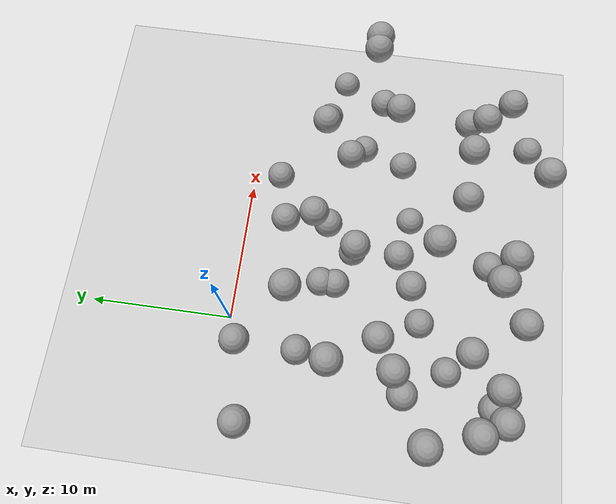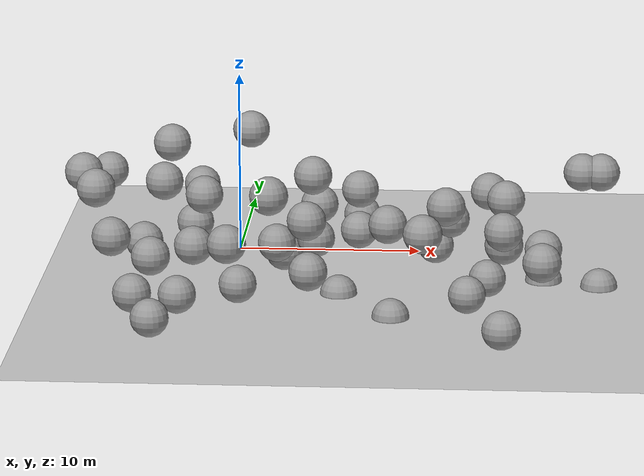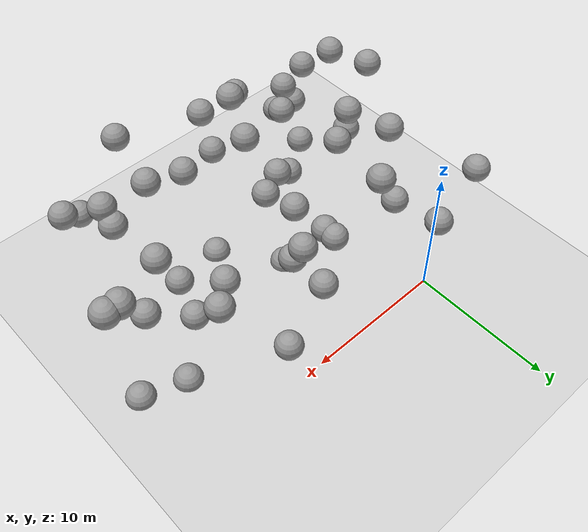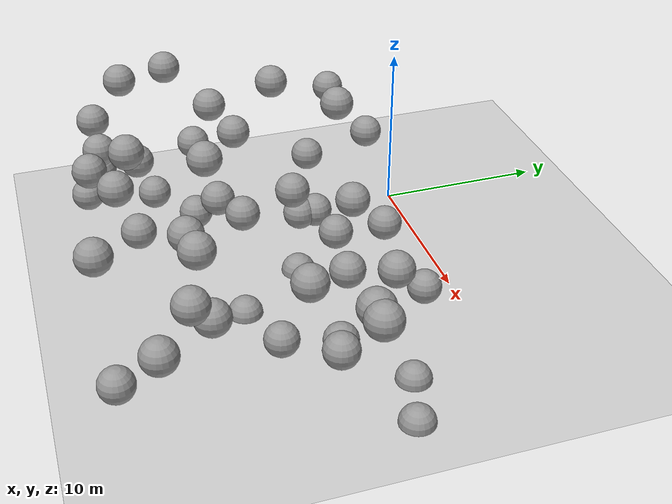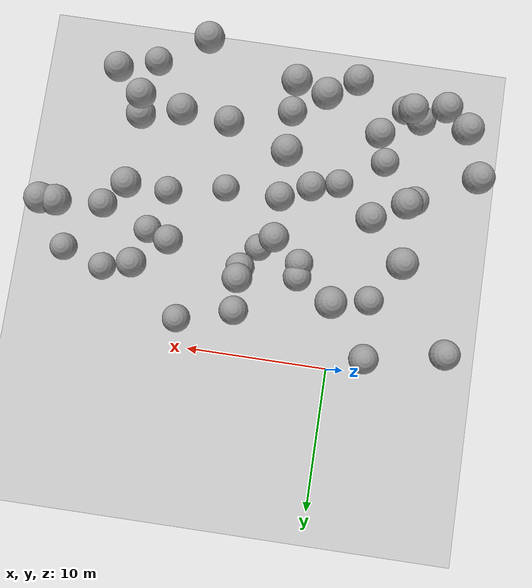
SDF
<sdf version="1.7">
 <world name="default">
  <model name="ground_plane">
   <static>1</static>
   <link name="link">
    <collision name="collision">
     <geometry><plane><normal>0 0 1</normal><size>100 100</size></plane></geometry>
     <surface>
      <contact><collide_bitmask>65535</collide_bitmask></contact>
      <friction><ode><mu>100</mu><mu2>50</mu2></ode></friction>
     </surface>
    </collision>
    <visual name="visual">
     <cast_shadows>0</cast_shadows>
     <geometry><plane><normal>0 0 1</normal><size>100 100</size></plane></geometry>
     <material>
      <script><uri>file://media/materials/scripts/gazebo.material</uri><name>Gazebo/Grey</name></script>
     </material>
    </visual>
   </link>
  </model>
  <model name="sphere_3">
   <static>1</static>
   <pose>1 -4 8 0 0 0</pose>
   <link name="link">
    <inertial>
     <mass>418.87902047863906</mass>
     <inertia>
      <ixx>167.55160819145564</ixx>
      <iyy>167.55160819145564</iyy>
      <izz>167.55160819145564</izz>
      <ixy>0</ixy>
      <ixz>0</ixz>
      <iyz>0</iyz>
     </inertia>
    </inertial>
    <collision name="collision"><geometry><sphere><radius>1.0</radius></sphere></geometry></collision>
    <visual name="visual">
     <geometry><sphere><radius>1.0</radius></sphere></geometry>
     <material>
      <script><uri>file://media/materials/scripts/gazebo.material</uri><name>Gazebo/Grey</name></script>
     </material>
    </visual>
   </link>
  </model>
  <model name="sphere_5">
   <static>1</static>
   <pose>11 -2 1 0 0 0</pose>
   <link name="link">
    <inertial>
     <mass>418.87902047863906</mass>
     <inertia>
      <ixx>167.55160819145564</ixx>
      <iyy>167.55160819145564</iyy>
      <izz>167.55160819145564</izz>
      <ixy>0</ixy>
      <ixz>0</ixz>
      <iyz>0</iyz>
     </inertia>
    </inertial>
    <collision name="collision"><geometry><sphere><radius>1.0</radius></sphere></geometry></collision>
    <visual name="visual">
     <geometry><sphere><radius>1.0</radius></sphere></geometry>
     <material>
      <script><uri>file://media/materials/scripts/gazebo.material</uri><name>Gazebo/Grey</name></script>
     </material>
    </visual>
   </link>
  </model>
  <model name="sphere_7">
   <static>1</static>
   <pose>20 -6 0 0 0 0</pose>
   <link name="link">
    <inertial>
     <mass>418.87902047863906</mass>
     <inertia>
      <ixx>167.55160819145564</ixx>
      <iyy>167.55160819145564</iyy>
      <izz>167.55160819145564</izz>
      <ixy>0</ixy>
      <ixz>0</ixz>
      <iyz>0</iyz>
     </inertia>
    </inertial>
    <collision name="collision"><geometry><sphere><radius>1.0</radius></sphere></geometry></collision>
    <visual name="visual">
     <geometry><sphere><radius>1.0</radius></sphere></geometry>
     <material>
      <script><uri>file://media/materials/scripts/gazebo.material</uri><name>Gazebo/Grey</name></script>
     </material>
    </visual>
   </link>
  </model>
  <model name="sphere_8">
   <static>1</static>
   <pose>5 -17 4 0 0 0</pose>
   <link name="link">
    <inertial>
     <mass>418.87902047863906</mass>
     <inertia>
      <ixx>167.55160819145564</ixx>
      <iyy>167.55160819145564</iyy>
      <izz>167.55160819145564</izz>
      <ixy>0</ixy>
      <ixz>0</ixz>
      <iyz>0</iyz>
     </inertia>
    </inertial>
    <collision name="collision"><geometry><sphere><radius>1.0</radius></sphere></geometry></collision>
    <visual name="visual">
     <geometry><sphere><radius>1.0</radius></sphere></geometry>
     <material>
      <script><uri>file://media/materials/scripts/gazebo.material</uri><name>Gazebo/Grey</name></script>
     </material>
    </visual>
   </link>
  </model>
  <model name="sphere_9">
   <static>1</static>
   <pose>-3 -11 7 0 0 0</pose>
   <link name="link">
    <inertial>
     <mass>418.87902047863906</mass>
     <inertia>
      <ixx>167.55160819145564</ixx>
      <iyy>167.55160819145564</iyy>
      <izz>167.55160819145564</izz>
      <ixy>0</ixy>
      <ixz>0</ixz>
      <iyz>0</iyz>
     </inertia>
    </inertial>
    <collision name="collision"><geometry><sphere><radius>1.0</radius></sphere></geometry></collision>
    <visual name="visual">
     <geometry><sphere><radius>1.0</radius></sphere></geometry>
     <material>
      <script><uri>file://media/materials/scripts/gazebo.material</uri><name>Gazebo/Grey</name></script>
     </material>
    </visual>
   </link>
  </model>
  <model name="sphere_14">
   <static>1</static>
   <pose>15 -20 2 0 0 0</pose>
   <link name="link">
    <inertial>
     <mass>418.87902047863906</mass>
     <inertia>
      <ixx>167.55160819145564</ixx>
      <iyy>167.55160819145564</iyy>
      <izz>167.55160819145564</izz>
      <ixy>0</ixy>
      <ixz>0</ixz>
      <iyz>0</iyz>
     </inertia>
    </inertial>
    <collision name="collision"><geometry><sphere><radius>1.0</radius></sphere></geometry></collision>
    <visual name="visual">
     <geometry><sphere><radius>1.0</radius></sphere></geometry>
     <material>
      <script><uri>file://media/materials/scripts/gazebo.material</uri><name>Gazebo/Grey</name></script>
     </material>
    </visual>
   </link>
  </model>
  <model name="sphere_15">
   <static>1</static>
   <pose>3 -7 2 0 0 0</pose>
   <link name="link">
    <inertial>
     <mass>418.87902047863906</mass>
     <inertia>
      <ixx>167.55160819145564</ixx>
      <iyy>167.55160819145564</iyy>
      <izz>167.55160819145564</izz>
      <ixy>0</ixy>
      <ixz>0</ixz>
      <iyz>0</iyz>
     </inertia>
    </inertial>
    <collision name="collision"><geometry><sphere><radius>1.0</radius></sphere></geometry></collision>
    <visual name="visual">
     <geometry><sphere><radius>1.0</radius></sphere></geometry>
     <material>
      <script><uri>file://media/materials/scripts/gazebo.material</uri><name>Gazebo/Grey</name></script>
     </material>
    </visual>
   </link>
  </model>
  <model name="sphere_18">
   <static>1</static>
   <pose>5 -11 4 0 0 0</pose>
   <link name="link">
    <inertial>
     <mass>418.87902047863906</mass>
     <inertia>
      <ixx>167.55160819145564</ixx>
      <iyy>167.55160819145564</iyy>
      <izz>167.55160819145564</izz>
      <ixy>0</ixy>
      <ixz>0</ixz>
      <iyz>0</iyz>
     </inertia>
    </inertial>
    <collision name="collision"><geometry><sphere><radius>1.0</radius></sphere></geometry></collision>
    <visual name="visual">
     <geometry><sphere><radius>1.0</radius></sphere></geometry>
     <material>
      <script><uri>file://media/materials/scripts/gazebo.material</uri><name>Gazebo/Grey</name></script>
     </material>
    </visual>
   </link>
  </model>
  <model name="sphere_19">
   <static>1</static>
   <pose>15 -10 6 0 0 0</pose>
   <link name="link">
    <inertial>
     <mass>418.87902047863906</mass>
     <inertia>
      <ixx>167.55160819145564</ixx>
      <iyy>167.55160819145564</iyy>
      <izz>167.55160819145564</izz>
      <ixy>0</ixy>
      <ixz>0</ixz>
      <iyz>0</iyz>
     </inertia>
    </inertial>
    <collision name="collision"><geometry><sphere><radius>1.0</radius></sphere></geometry></collision>
    <visual name="visual">
     <geometry><sphere><radius>1.0</radius></sphere></geometry>
     <material>
      <script><uri>file://media/materials/scripts/gazebo.material</uri><name>Gazebo/Grey</name></script>
     </material>
    </visual>
   </link>
  </model>
  <model name="sphere_20">
   <static>1</static>
   <pose>-3 -18 5 0 0 0</pose>
   <link name="link">
    <inertial>
     <mass>418.87902047863906</mass>
     <inertia>
      <ixx>167.55160819145564</ixx>
      <iyy>167.55160819145564</iyy>
      <izz>167.55160819145564</izz>
      <ixy>0</ixy>
      <ixz>0</ixz>
      <iyz>0</iyz>
     </inertia>
    </inertial>
    <collision name="collision"><geometry><sphere><radius>1.0</radius></sphere></geometry></collision>
    <visual name="visual">
     <geometry><sphere><radius>1.0</radius></sphere></geometry>
     <material>
      <script><uri>file://media/materials/scripts/gazebo.material</uri><name>Gazebo/Grey</name></script>
     </material>
    </visual>
   </link>
  </model>
  <model name="sphere_22">
   <static>1</static>
   <pose>5 -8 5 0 0 0</pose>
   <link name="link">
    <inertial>
     <mass>418.87902047863906</mass>
     <inertia>
      <ixx>167.55160819145564</ixx>
      <iyy>167.55160819145564</iyy>
      <izz>167.55160819145564</izz>
      <ixy>0</ixy>
      <ixz>0</ixz>
      <iyz>0</iyz>
     </inertia>
    </inertial>
    <collision name="collision"><geometry><sphere><radius>1.0</radius></sphere></geometry></collision>
    <visual name="visual">
     <geometry><sphere><radius>1.0</radius></sphere></geometry>
     <material>
      <script><uri>file://media/materials/scripts/gazebo.material</uri><name>Gazebo/Grey</name></script>
     </material>
    </visual>
   </link>
  </model>
  <model name="sphere_26">
   <static>1</static>
   <pose>9 -12 0 0 0 0</pose>
   <link name="link">
    <inertial>
     <mass>418.87902047863906</mass>
     <inertia>
      <ixx>167.55160819145564</ixx>
      <iyy>167.55160819145564</iyy>
      <izz>167.55160819145564</izz>
      <ixy>0</ixy>
      <ixz>0</ixz>
      <iyz>0</iyz>
     </inertia>
    </inertial>
    <collision name="collision"><geometry><sphere><radius>1.0</radius></sphere></geometry></collision>
    <visual name="visual">
     <geometry><sphere><radius>1.0</radius></sphere></geometry>
     <material>
      <script><uri>file://media/materials/scripts/gazebo.material</uri><name>Gazebo/Grey</name></script>
     </material>
    </visual>
   </link>
  </model>
  <model name="sphere_29">
   <static>1</static>
   <pose>15 -15 5 0 0 0</pose>
   <link name="link">
    <inertial>
     <mass>418.87902047863906</mass>
     <inertia>
      <ixx>167.55160819145564</ixx>
      <iyy>167.55160819145564</iyy>
      <izz>167.55160819145564</izz>
      <ixy>0</ixy>
      <ixz>0</ixz>
      <iyz>0</iyz>
     </inertia>
    </inertial>
    <collision name="collision"><geometry><sphere><radius>1.0</radius></sphere></geometry></collision>
    <visual name="visual">
     <geometry><sphere><radius>1.0</radius></sphere></geometry>
     <material>
      <script><uri>file://media/materials/scripts/gazebo.material</uri><name>Gazebo/Grey</name></script>
     </material>
    </visual>
   </link>
  </model>
  <model name="sphere_30">
   <static>1</static>
   <pose>6 -8 0 0 0 0</pose>
   <link name="link">
    <inertial>
     <mass>418.87902047863906</mass>
     <inertia>
      <ixx>167.55160819145564</ixx>
      <iyy>167.55160819145564</iyy>
      <izz>167.55160819145564</izz>
      <ixy>0</ixy>
      <ixz>0</ixz>
      <iyz>0</iyz>
     </inertia>
    </inertial>
    <collision name="collision"><geometry><sphere><radius>1.0</radius></sphere></geometry></collision>
    <visual name="visual">
     <geometry><sphere><radius>1.0</radius></sphere></geometry>
     <material>
      <script><uri>file://media/materials/scripts/gazebo.material</uri><name>Gazebo/Grey</name></script>
     </material>
    </visual>
   </link>
  </model>
  <model name="sphere_32">
   <static>1</static>
   <pose>14 -8 1 0 0 0</pose>
   <link name="link">
    <inertial>
     <mass>418.87902047863906</mass>
     <inertia>
      <ixx>167.55160819145564</ixx>
      <iyy>167.55160819145564</iyy>
      <izz>167.55160819145564</izz>
      <ixy>0</ixy>
      <ixz>0</ixz>
      <iyz>0</iyz>
     </inertia>
    </inertial>
    <collision name="collision"><geometry><sphere><radius>1.0</radius></sphere></geometry></collision>
    <visual name="visual">
     <geometry><sphere><radius>1.0</radius></sphere></geometry>
     <material>
      <script><uri>file://media/materials/scripts/gazebo.material</uri><name>Gazebo/Grey</name></script>
     </material>
    </visual>
   </link>
  </model>
  <model name="sphere_33">
   <static>1</static>
   <pose>11 -20 7 0 0 0</pose>
   <link name="link">
    <inertial>
     <mass>418.87902047863906</mass>
     <inertia>
      <ixx>167.55160819145564</ixx>
      <iyy>167.55160819145564</iyy>
      <izz>167.55160819145564</izz>
      <ixy>0</ixy>
      <ixz>0</ixz>
      <iyz>0</iyz>
     </inertia>
    </inertial>
    <collision name="collision"><geometry><sphere><radius>1.0</radius></sphere></geometry></collision>
    <visual name="visual">
     <geometry><sphere><radius>1.0</radius></sphere></geometry>
     <material>
      <script><uri>file://media/materials/scripts/gazebo.material</uri><name>Gazebo/Grey</name></script>
     </material>
    </visual>
   </link>
  </model>
  <model name="sphere_41">
   <static>1</static>
   <pose>-4 -18 3 0 0 0</pose>
   <link name="link">
    <inertial>
     <mass>418.87902047863906</mass>
     <inertia>
      <ixx>167.55160819145564</ixx>
      <iyy>167.55160819145564</iyy>
      <izz>167.55160819145564</izz>
      <ixy>0</ixy>
      <ixz>0</ixz>
      <iyz>0</iyz>
     </inertia>
    </inertial>
    <collision name="collision"><geometry><sphere><radius>1.0</radius></sphere></geometry></collision>
    <visual name="visual">
     <geometry><sphere><radius>1.0</radius></sphere></geometry>
     <material>
      <script><uri>file://media/materials/scripts/gazebo.material</uri><name>Gazebo/Grey</name></script>
     </material>
    </visual>
   </link>
  </model>
  <model name="sphere_42">
   <static>1</static>
   <pose>15 -16 6 0 0 0</pose>
   <link name="link">
    <inertial>
     <mass>418.87902047863906</mass>
     <inertia>
      <ixx>167.55160819145564</ixx>
      <iyy>167.55160819145564</iyy>
      <izz>167.55160819145564</izz>
      <ixy>0</ixy>
      <ixz>0</ixz>
      <iyz>0</iyz>
     </inertia>
    </inertial>
    <collision name="collision"><geometry><sphere><radius>1.0</radius></sphere></geometry></collision>
    <visual name="visual">
     <geometry><sphere><radius>1.0</radius></sphere></geometry>
     <material>
      <script><uri>file://media/materials/scripts/gazebo.material</uri><name>Gazebo/Grey</name></script>
     </material>
    </visual>
   </link>
  </model>
  <model name="sphere_47">
   <static>1</static>
   <pose>-4 -12 4 0 0 0</pose>
   <link name="link">
    <inertial>
     <mass>418.87902047863906</mass>
     <inertia>
      <ixx>167.55160819145564</ixx>
      <iyy>167.55160819145564</iyy>
      <izz>167.55160819145564</izz>
      <ixy>0</ixy>
      <ixz>0</ixz>
      <iyz>0</iyz>
     </inertia>
    </inertial>
    <collision name="collision"><geometry><sphere><radius>1.0</radius></sphere></geometry></collision>
    <visual name="visual">
     <geometry><sphere><radius>1.0</radius></sphere></geometry>
     <material>
      <script><uri>file://media/materials/scripts/gazebo.material</uri><name>Gazebo/Grey</name></script>
     </material>
    </visual>
   </link>
  </model>
  <model name="sphere_53">
   <static>1</static>
   <pose>9 -15 6 0 0 0</pose>
   <link name="link">
    <inertial>
     <mass>418.87902047863906</mass>
     <inertia>
      <ixx>167.55160819145564</ixx>
      <iyy>167.55160819145564</iyy>
      <izz>167.55160819145564</izz>
      <ixy>0</ixy>
      <ixz>0</ixz>
      <iyz>0</iyz>
     </inertia>
    </inertial>
    <collision name="collision"><geometry><sphere><radius>1.0</radius></sphere></geometry></collision>
    <visual name="visual">
     <geometry><sphere><radius>1.0</radius></sphere></geometry>
     <material>
      <script><uri>file://media/materials/scripts/gazebo.material</uri><name>Gazebo/Grey</name></script>
     </material>
    </visual>
   </link>
  </model>
  <model name="sphere_60">
   <static>1</static>
   <pose>-3 -7 8 0 0 0</pose>
   <link name="link">
    <inertial>
     <mass>418.87902047863906</mass>
     <inertia>
      <ixx>167.55160819145564</ixx>
      <iyy>167.55160819145564</iyy>
      <izz>167.55160819145564</izz>
      <ixy>0</ixy>
      <ixz>0</ixz>
      <iyz>0</iyz>
     </inertia>
    </inertial>
    <collision name="collision"><geometry><sphere><radius>1.0</radius></sphere></geometry></collision>
    <visual name="visual">
     <geometry><sphere><radius>1.0</radius></sphere></geometry>
     <material>
      <script><uri>file://media/materials/scripts/gazebo.material</uri><name>Gazebo/Grey</name></script>
     </material>
    </visual>
   </link>
  </model>
  <model name="sphere_62">
   <static>1</static>
   <pose>3 -12 4 0 0 0</pose>
   <link name="link">
    <inertial>
     <mass>418.87902047863906</mass>
     <inertia>
      <ixx>167.55160819145564</ixx>
      <iyy>167.55160819145564</iyy>
      <izz>167.55160819145564</izz>
      <ixy>0</ixy>
      <ixz>0</ixz>
      <iyz>0</iyz>
     </inertia>
    </inertial>
    <collision name="collision"><geometry><sphere><radius>1.0</radius></sphere></geometry></collision>
    <visual name="visual">
     <geometry><sphere><radius>1.0</radius></sphere></geometry>
     <material>
      <script><uri>file://media/materials/scripts/gazebo.material</uri><name>Gazebo/Grey</name></script>
     </material>
    </visual>
   </link>
  </model>
  <model name="sphere_66">
   <static>1</static>
   <pose>13 -11 1 0 0 0</pose>
   <link name="link">
    <inertial>
     <mass>418.87902047863906</mass>
     <inertia>
      <ixx>167.55160819145564</ixx>
      <iyy>167.55160819145564</iyy>
      <izz>167.55160819145564</izz>
      <ixy>0</ixy>
      <ixz>0</ixz>
      <iyz>0</iyz>
     </inertia>
    </inertial>
    <collision name="collision"><geometry><sphere><radius>1.0</radius></sphere></geometry></collision>
    <visual name="visual">
     <geometry><sphere><radius>1.0</radius></sphere></geometry>
     <material>
      <script><uri>file://media/materials/scripts/gazebo.material</uri><name>Gazebo/Grey</name></script>
     </material>
    </visual>
   </link>
  </model>
  <model name="sphere_68">
   <static>1</static>
   <pose>12 -7 4 0 0 0</pose>
   <link name="link">
    <inertial>
     <mass>418.87902047863906</mass>
     <inertia>
      <ixx>167.55160819145564</ixx>
      <iyy>167.55160819145564</iyy>
      <izz>167.55160819145564</izz>
      <ixy>0</ixy>
      <ixz>0</ixz>
      <iyz>0</iyz>
     </inertia>
    </inertial>
    <collision name="collision"><geometry><sphere><radius>1.0</radius></sphere></geometry></collision>
    <visual name="visual">
     <geometry><sphere><radius>1.0</radius></sphere></geometry>
     <material>
      <script><uri>file://media/materials/scripts/gazebo.material</uri><name>Gazebo/Grey</name></script>
     </material>
    </visual>
   </link>
  </model>
  <model name="sphere_72">
   <static>1</static>
   <pose>12 -15 7 0 0 0</pose>
   <link name="link">
    <inertial>
     <mass>418.87902047863906</mass>
     <inertia>
      <ixx>167.55160819145564</ixx>
      <iyy>167.55160819145564</iyy>
      <izz>167.55160819145564</izz>
      <ixy>0</ixy>
      <ixz>0</ixz>
      <iyz>0</iyz>
     </inertia>
    </inertial>
    <collision name="collision"><geometry><sphere><radius>1.0</radius></sphere></geometry></collision>
    <visual name="visual">
     <geometry><sphere><radius>1.0</radius></sphere></geometry>
     <material>
      <script><uri>file://media/materials/scripts/gazebo.material</uri><name>Gazebo/Grey</name></script>
     </material>
    </visual>
   </link>
  </model>
  <model name="sphere_75">
   <static>1</static>
   <pose>-2 -15 2 0 0 0</pose>
   <link name="link">
    <inertial>
     <mass>418.87902047863906</mass>
     <inertia>
      <ixx>167.55160819145564</ixx>
      <iyy>167.55160819145564</iyy>
      <izz>167.55160819145564</izz>
      <ixy>0</ixy>
      <ixz>0</ixz>
      <iyz>0</iyz>
     </inertia>
    </inertial>
    <collision name="collision"><geometry><sphere><radius>1.0</radius></sphere></geometry></collision>
    <visual name="visual">
     <geometry><sphere><radius>1.0</radius></sphere></geometry>
     <material>
      <script><uri>file://media/materials/scripts/gazebo.material</uri><name>Gazebo/Grey</name></script>
     </material>
    </visual>
   </link>
  </model>
  <model name="sphere_77">
   <static>1</static>
   <pose>7 -5 5 0 0 0</pose>
   <link name="link">
    <inertial>
     <mass>418.87902047863906</mass>
     <inertia>
      <ixx>167.55160819145564</ixx>
      <iyy>167.55160819145564</iyy>
      <izz>167.55160819145564</izz>
      <ixy>0</ixy>
      <ixz>0</ixz>
      <iyz>0</iyz>
     </inertia>
    </inertial>
    <collision name="collision"><geometry><sphere><radius>1.0</radius></sphere></geometry></collision>
    <visual name="visual">
     <geometry><sphere><radius>1.0</radius></sphere></geometry>
     <material>
      <script><uri>file://media/materials/scripts/gazebo.material</uri><name>Gazebo/Grey</name></script>
     </material>
    </visual>
   </link>
  </model>
  <model name="sphere_78">
   <static>1</static>
   <pose>1 -19 6 0 0 0</pose>
   <link name="link">
    <inertial>
     <mass>418.87902047863906</mass>
     <inertia>
      <ixx>167.55160819145564</ixx>
      <iyy>167.55160819145564</iyy>
      <izz>167.55160819145564</izz>
      <ixy>0</ixy>
      <ixz>0</ixz>
      <iyz>0</iyz>
     </inertia>
    </inertial>
    <collision name="collision"><geometry><sphere><radius>1.0</radius></sphere></geometry></collision>
    <visual name="visual">
     <geometry><sphere><radius>1.0</radius></sphere></geometry>
     <material>
      <script><uri>file://media/materials/scripts/gazebo.material</uri><name>Gazebo/Grey</name></script>
     </material>
    </visual>
   </link>
  </model>
  <model name="sphere_79">
   <static>1</static>
   <pose>5 -13 8 0 0 0</pose>
   <link name="link">
    <inertial>
     <mass>418.87902047863906</mass>
     <inertia>
      <ixx>167.55160819145564</ixx>
      <iyy>167.55160819145564</iyy>
      <izz>167.55160819145564</izz>
      <ixy>0</ixy>
      <ixz>0</ixz>
      <iyz>0</iyz>
     </inertia>
    </inertial>
    <collision name="collision"><geometry><sphere><radius>1.0</radius></sphere></geometry></collision>
    <visual name="visual">
     <geometry><sphere><radius>1.0</radius></sphere></geometry>
     <material>
      <script><uri>file://media/materials/scripts/gazebo.material</uri><name>Gazebo/Grey</name></script>
     </material>
    </visual>
   </link>
  </model>
  <model name="sphere_91">
   <static>1</static>
   <pose>14 -5 5 0 0 0</pose>
   <link name="link">
    <inertial>
     <mass>418.87902047863906</mass>
     <inertia>
      <ixx>167.55160819145564</ixx>
      <iyy>167.55160819145564</iyy>
      <izz>167.55160819145564</izz>
      <ixy>0</ixy>
      <ixz>0</ixz>
      <iyz>0</iyz>
     </inertia>
    </inertial>
    <collision name="collision"><geometry><sphere><radius>1.0</radius></sphere></geometry></collision>
    <visual name="visual">
     <geometry><sphere><radius>1.0</radius></sphere></geometry>
     <material>
      <script><uri>file://media/materials/scripts/gazebo.material</uri><name>Gazebo/Grey</name></script>
     </material>
    </visual>
   </link>
  </model>
  <model name="sphere_93">
   <static>1</static>
   <pose>17 -9 3 0 0 0</pose>
   <link name="link">
    <inertial>
     <mass>418.87902047863906</mass>
     <inertia>
      <ixx>167.55160819145564</ixx>
      <iyy>167.55160819145564</iyy>
      <izz>167.55160819145564</izz>
      <ixy>0</ixy>
      <ixz>0</ixz>
      <iyz>0</iyz>
     </inertia>
    </inertial>
    <collision name="collision"><geometry><sphere><radius>1.0</radius></sphere></geometry></collision>
    <visual name="visual">
     <geometry><sphere><radius>1.0</radius></sphere></geometry>
     <material>
      <script><uri>file://media/materials/scripts/gazebo.material</uri><name>Gazebo/Grey</name></script>
     </material>
    </visual>
   </link>
  </model>
  <model name="sphere_94">
   <static>1</static>
   <pose>17 -5 0 0 0 0</pose>
   <link name="link">
    <inertial>
     <mass>418.87902047863906</mass>
     <inertia>
      <ixx>167.55160819145564</ixx>
      <iyy>167.55160819145564</iyy>
      <izz>167.55160819145564</izz>
      <ixy>0</ixy>
      <ixz>0</ixz>
      <iyz>0</iyz>
     </inertia>
    </inertial>
    <collision name="collision"><geometry><sphere><radius>1.0</radius></sphere></geometry></collision>
    <visual name="visual">
     <geometry><sphere><radius>1.0</radius></sphere></geometry>
     <material>
      <script><uri>file://media/materials/scripts/gazebo.material</uri><name>Gazebo/Grey</name></script>
     </material>
    </visual>
   </link>
  </model>
  <model name="sphere_95">
   <static>1</static>
   <pose>-1 -10 6 0 0 0</pose>
   <link name="link">
    <inertial>
     <mass>418.87902047863906</mass>
     <inertia>
      <ixx>167.55160819145564</ixx>
      <iyy>167.55160819145564</iyy>
      <izz>167.55160819145564</izz>
      <ixy>0</ixy>
      <ixz>0</ixz>
      <iyz>0</iyz>
     </inertia>
    </inertial>
    <collision name="collision"><geometry><sphere><radius>1.0</radius></sphere></geometry></collision>
    <visual name="visual">
     <geometry><sphere><radius>1.0</radius></sphere></geometry>
     <material>
      <script><uri>file://media/materials/scripts/gazebo.material</uri><name>Gazebo/Grey</name></script>
     </material>
    </visual>
   </link>
  </model>
  <model name="sphere_99">
   <static>1</static>
   <pose>-3 -19 2 0 0 0</pose>
   <link name="link">
    <inertial>
     <mass>418.87902047863906</mass>
     <inertia>
      <ixx>167.55160819145564</ixx>
      <iyy>167.55160819145564</iyy>
      <izz>167.55160819145564</izz>
      <ixy>0</ixy>
      <ixz>0</ixz>
      <iyz>0</iyz>
     </inertia>
    </inertial>
    <collision name="collision"><geometry><sphere><radius>1.0</radius></sphere></geometry></collision>
    <visual name="visual">
     <geometry><sphere><radius>1.0</radius></sphere></geometry>
     <material>
      <script><uri>file://media/materials/scripts/gazebo.material</uri><name>Gazebo/Grey</name></script>
     </material>
    </visual>
   </link>
  </model>
  <model name="sphere_100">
   <static>1</static>
   <pose>7 -3 3 0 0 0</pose>
   <link name="link">
    <inertial>
     <mass>418.87902047863906</mass>
     <inertia>
      <ixx>167.55160819145564</ixx>
      <iyy>167.55160819145564</iyy>
      <izz>167.55160819145564</izz>
      <ixy>0</ixy>
      <ixz>0</ixz>
      <iyz>0</iyz>
     </inertia>
    </inertial>
    <collision name="collision"><geometry><sphere><radius>1.0</radius></sphere></geometry></collision>
    <visual name="visual">
     <geometry><sphere><radius>1.0</radius></sphere></geometry>
     <material>
      <script><uri>file://media/materials/scripts/gazebo.material</uri><name>Gazebo/Grey</name></script>
     </material>
    </visual>
   </link>
  </model>
  <model name="sphere_105">
   <static>1</static>
   <pose>-7 -13 8 0 0 0</pose>
   <link name="link">
    <inertial>
     <mass>418.87902047863906</mass>
     <inertia>
      <ixx>167.55160819145564</ixx>
      <iyy>167.55160819145564</iyy>
      <izz>167.55160819145564</izz>
      <ixy>0</ixy>
      <ixz>0</ixz>
      <iyz>0</iyz>
     </inertia>
    </inertial>
    <collision name="collision"><geometry><sphere><radius>1.0</radius></sphere></geometry></collision>
    <visual name="visual">
     <geometry><sphere><radius>1.0</radius></sphere></geometry>
     <material>
      <script><uri>file://media/materials/scripts/gazebo.material</uri><name>Gazebo/Grey</name></script>
     </material>
    </visual>
   </link>
  </model>
  <model name="sphere_110">
   <static>1</static>
   <pose>7 -6 3 0 0 0</pose>
   <link name="link">
    <inertial>
     <mass>418.87902047863906</mass>
     <inertia>
      <ixx>167.55160819145564</ixx>
      <iyy>167.55160819145564</iyy>
      <izz>167.55160819145564</izz>
      <ixy>0</ixy>
      <ixz>0</ixz>
      <iyz>0</iyz>
     </inertia>
    </inertial>
    <collision name="collision"><geometry><sphere><radius>1.0</radius></sphere></geometry></collision>
    <visual name="visual">
     <geometry><sphere><radius>1.0</radius></sphere></geometry>
     <material>
      <script><uri>file://media/materials/scripts/gazebo.material</uri><name>Gazebo/Grey</name></script>
     </material>
    </visual>
   </link>
  </model>
  <model name="sphere_113">
   <static>1</static>
   <pose>-7 -2 5 0 0 0</pose>
   <link name="link">
    <inertial>
     <mass>418.87902047863906</mass>
     <inertia>
      <ixx>167.55160819145564</ixx>
      <iyy>167.55160819145564</iyy>
      <izz>167.55160819145564</izz>
      <ixy>0</ixy>
      <ixz>0</ixz>
      <iyz>0</iyz>
     </inertia>
    </inertial>
    <collision name="collision"><geometry><sphere><radius>1.0</radius></sphere></geometry></collision>
    <visual name="visual">
     <geometry><sphere><radius>1.0</radius></sphere></geometry>
     <material>
      <script><uri>file://media/materials/scripts/gazebo.material</uri><name>Gazebo/Grey</name></script>
     </material>
    </visual>
   </link>
  </model>
  <model name="sphere_117">
   <static>1</static>
   <pose>20 -8 7 0 0 0</pose>
   <link name="link">
    <inertial>
     <mass>418.87902047863906</mass>
     <inertia>
      <ixx>167.55160819145564</ixx>
      <iyy>167.55160819145564</iyy>
      <izz>167.55160819145564</izz>
      <ixy>0</ixy>
      <ixz>0</ixz>
      <iyz>0</iyz>
     </inertia>
    </inertial>
    <collision name="collision"><geometry><sphere><radius>1.0</radius></sphere></geometry></collision>
    <visual name="visual">
     <geometry><sphere><radius>1.0</radius></sphere></geometry>
     <material>
      <script><uri>file://media/materials/scripts/gazebo.material</uri><name>Gazebo/Grey</name></script>
     </material>
    </visual>
   </link>
  </model>
  <model name="sphere_126">
   <static>1</static>
   <pose>-1 -16 5 0 0 0</pose>
   <link name="link">
    <inertial>
     <mass>418.87902047863906</mass>
     <inertia>
      <ixx>167.55160819145564</ixx>
      <iyy>167.55160819145564</iyy>
      <izz>167.55160819145564</izz>
      <ixy>0</ixy>
      <ixz>0</ixz>
      <iyz>0</iyz>
     </inertia>
    </inertial>
    <collision name="collision"><geometry><sphere><radius>1.0</radius></sphere></geometry></collision>
    <visual name="visual">
     <geometry><sphere><radius>1.0</radius></sphere></geometry>
     <material>
      <script><uri>file://media/materials/scripts/gazebo.material</uri><name>Gazebo/Grey</name></script>
     </material>
    </visual>
   </link>
  </model>
  <model name="sphere_130">
   <static>1</static>
   <pose>-6 -16 8 0 0 0</pose>
   <link name="link">
    <inertial>
     <mass>418.87902047863906</mass>
     <inertia>
      <ixx>167.55160819145564</ixx>
      <iyy>167.55160819145564</iyy>
      <izz>167.55160819145564</izz>
      <ixy>0</ixy>
      <ixz>0</ixz>
      <iyz>0</iyz>
     </inertia>
    </inertial>
    <collision name="collision"><geometry><sphere><radius>1.0</radius></sphere></geometry></collision>
    <visual name="visual">
     <geometry><sphere><radius>1.0</radius></sphere></geometry>
     <material>
      <script><uri>file://media/materials/scripts/gazebo.material</uri><name>Gazebo/Grey</name></script>
     </material>
    </visual>
   </link>
  </model>
  <model name="sphere_131">
   <static>1</static>
   <pose>-2 -5 3 0 0 0</pose>
   <link name="link">
    <inertial>
     <mass>418.87902047863906</mass>
     <inertia>
      <ixx>167.55160819145564</ixx>
      <iyy>167.55160819145564</iyy>
      <izz>167.55160819145564</izz>
      <ixy>0</ixy>
      <ixz>0</ixz>
      <iyz>0</iyz>
     </inertia>
    </inertial>
    <collision name="collision"><geometry><sphere><radius>1.0</radius></sphere></geometry></collision>
    <visual name="visual">
     <geometry><sphere><radius>1.0</radius></sphere></geometry>
     <material>
      <script><uri>file://media/materials/scripts/gazebo.material</uri><name>Gazebo/Grey</name></script>
     </material>
    </visual>
   </link>
  </model>
  <model name="sphere_137">
   <static>1</static>
   <pose>3 -6 2 0 0 0</pose>
   <link name="link">
    <inertial>
     <mass>418.87902047863906</mass>
     <inertia>
      <ixx>167.55160819145564</ixx>
      <iyy>167.55160819145564</iyy>
      <izz>167.55160819145564</izz>
      <ixy>0</ixy>
      <ixz>0</ixz>
      <iyz>0</iyz>
     </inertia>
    </inertial>
    <collision name="collision"><geometry><sphere><radius>1.0</radius></sphere></geometry></collision>
    <visual name="visual">
     <geometry><sphere><radius>1.0</radius></sphere></geometry>
     <material>
      <script><uri>file://media/materials/scripts/gazebo.material</uri><name>Gazebo/Grey</name></script>
     </material>
    </visual>
   </link>
  </model>
  <model name="sphere_140">
   <static>1</static>
   <pose>-2 -1 4 0 0 0</pose>
   <link name="link">
    <inertial>
     <mass>418.87902047863906</mass>
     <inertia>
      <ixx>167.55160819145564</ixx>
      <iyy>167.55160819145564</iyy>
      <izz>167.55160819145564</izz>
      <ixy>0</ixy>
      <ixz>0</ixz>
      <iyz>0</iyz>
     </inertia>
    </inertial>
    <collision name="collision"><geometry><sphere><radius>1.0</radius></sphere></geometry></collision>
    <visual name="visual">
     <geometry><sphere><radius>1.0</radius></sphere></geometry>
     <material>
      <script><uri>file://media/materials/scripts/gazebo.material</uri><name>Gazebo/Grey</name></script>
     </material>
    </visual>
   </link>
  </model>
  <model name="sphere_141">
   <static>1</static>
   <pose>-5 -18 6 0 0 0</pose>
   <link name="link">
    <inertial>
     <mass>418.87902047863906</mass>
     <inertia>
      <ixx>167.55160819145564</ixx>
      <iyy>167.55160819145564</iyy>
      <izz>167.55160819145564</izz>
      <ixy>0</ixy>
      <ixz>0</ixz>
      <iyz>0</iyz>
     </inertia>
    </inertial>
    <collision name="collision"><geometry><sphere><radius>1.0</radius></sphere></geometry></collision>
    <visual name="visual">
     <geometry><sphere><radius>1.0</radius></sphere></geometry>
     <material>
      <script><uri>file://media/materials/scripts/gazebo.material</uri><name>Gazebo/Grey</name></script>
     </material>
    </visual>
   </link>
  </model>
  <model name="sphere_142">
   <static>1</static>
   <pose>5 -18 7 0 0 0</pose>
   <link name="link">
    <inertial>
     <mass>418.87902047863906</mass>
     <inertia>
      <ixx>167.55160819145564</ixx>
      <iyy>167.55160819145564</iyy>
      <izz>167.55160819145564</izz>
      <ixy>0</ixy>
      <ixz>0</ixz>
      <iyz>0</iyz>
     </inertia>
    </inertial>
    <collision name="collision"><geometry><sphere><radius>1.0</radius></sphere></geometry></collision>
    <visual name="visual">
     <geometry><sphere><radius>1.0</radius></sphere></geometry>
     <material>
      <script><uri>file://media/materials/scripts/gazebo.material</uri><name>Gazebo/Grey</name></script>
     </material>
    </visual>
   </link>
  </model>
  <model name="sphere_144">
   <static>1</static>
   <pose>17 -18 5 0 0 0</pose>
   <link name="link">
    <inertial>
     <mass>418.87902047863906</mass>
     <inertia>
      <ixx>167.55160819145564</ixx>
      <iyy>167.55160819145564</iyy>
      <izz>167.55160819145564</izz>
      <ixy>0</ixy>
      <ixz>0</ixz>
      <iyz>0</iyz>
     </inertia>
    </inertial>
    <collision name="collision"><geometry><sphere><radius>1.0</radius></sphere></geometry></collision>
    <visual name="visual">
     <geometry><sphere><radius>1.0</radius></sphere></geometry>
     <material>
      <script><uri>file://media/materials/scripts/gazebo.material</uri><name>Gazebo/Grey</name></script>
     </material>
    </visual>
   </link>
  </model>
  <model name="sphere_147">
   <static>1</static>
   <pose>19 -8 7 0 0 0</pose>
   <link name="link">
    <inertial>
     <mass>418.87902047863906</mass>
     <inertia>
      <ixx>167.55160819145564</ixx>
      <iyy>167.55160819145564</iyy>
      <izz>167.55160819145564</izz>
      <ixy>0</ixy>
      <ixz>0</ixz>
      <iyz>0</iyz>
     </inertia>
    </inertial>
    <collision name="collision"><geometry><sphere><radius>1.0</radius></sphere></geometry></collision>
    <visual name="visual">
     <geometry><sphere><radius>1.0</radius></sphere></geometry>
     <material>
      <script><uri>file://media/materials/scripts/gazebo.material</uri><name>Gazebo/Grey</name></script>
     </material>
    </visual>
   </link>
  </model>
  <model name="sphere_149">
   <static>1</static>
   <pose>3 -17 8 0 0 0</pose>
   <link name="link">
    <inertial>
     <mass>418.87902047863906</mass>
     <inertia>
      <ixx>167.55160819145564</ixx>
      <iyy>167.55160819145564</iyy>
      <izz>167.55160819145564</izz>
      <ixy>0</ixy>
      <ixz>0</ixz>
      <iyz>0</iyz>
     </inertia>
    </inertial>
    <collision name="collision"><geometry><sphere><radius>1.0</radius></sphere></geometry></collision>
    <visual name="visual">
     <geometry><sphere><radius>1.0</radius></sphere></geometry>
     <material>
      <script><uri>file://media/materials/scripts/gazebo.material</uri><name>Gazebo/Grey</name></script>
     </material>
    </visual>
   </link>
  </model>
  <model name="sphere_150">
   <static>1</static>
   <pose>1 -13 2 0 0 0</pose>
   <link name="link">
    <inertial>
     <mass>418.87902047863906</mass>
     <inertia>
      <ixx>167.55160819145564</ixx>
      <iyy>167.55160819145564</iyy>
      <izz>167.55160819145564</izz>
      <ixy>0</ixy>
      <ixz>0</ixz>
      <iyz>0</iyz>
     </inertia>
    </inertial>
    <collision name="collision"><geometry><sphere><radius>1.0</radius></sphere></geometry></collision>
    <visual name="visual">
     <geometry><sphere><radius>1.0</radius></sphere></geometry>
     <material>
      <script><uri>file://media/materials/scripts/gazebo.material</uri><name>Gazebo/Grey</name></script>
     </material>
    </visual>
   </link>
  </model>
 </world>
</sdf>
